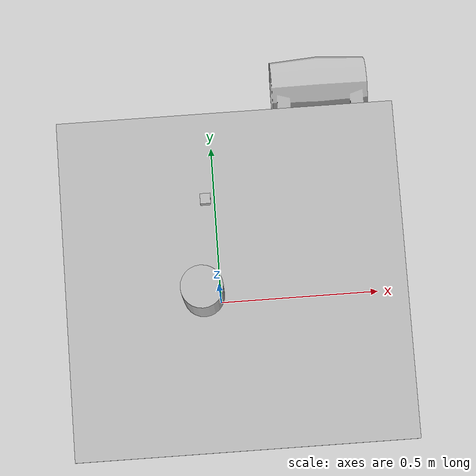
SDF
<sdf version="1.6">
 <world name="default">
  <light name="sun" type="directional">
   <pose>0 0 10 0 -0 0</pose>
   <diffuse>0.8 0.8 0.8 1</diffuse>
   <specular>0.2 0.2 0.2 1</specular>
   <attenuation>
    <range>1000</range>
    <constant>0.9</constant>
    <linear>0.01</linear>
    <quadratic>0.001</quadratic>
   </attenuation>
   <direction>-0.5 0.1 -0.9</direction>
  </light>
  <model name="ground_plane">
   <static>1</static>
   <link name="link">
    <collision name="collision">
     <geometry><plane><normal>0 0 1</normal><size>100 100</size></plane></geometry>
     <surface>
      <contact><collide_bitmask>65535</collide_bitmask></contact>
      <friction><ode><mu>100</mu><mu2>50</mu2></ode></friction>
     </surface>
    </collision>
    <visual name="visual">
     <cast_shadows>0</cast_shadows>
     <geometry><plane><normal>0 0 1</normal><size>100 100</size></plane></geometry>
     <material>
      <script><uri>file://media/materials/scripts/gazebo.material</uri><name>Gazebo/Grey</name></script>
     </material>
    </visual>
   </link>
  </model>
  <gravity>0 0 -9.8</gravity>
  <magnetic_field>6e-06 2.3e-05 -4.2e-05</magnetic_field>
  <atmosphere type="adiabatic"/>
  <physics name="default_physics" default="0" type="ode">
   <max_step_size>0.001</max_step_size>
   <real_time_factor>1</real_time_factor>
   <real_time_update_rate>1000</real_time_update_rate>
  </physics>
  <scene><ambient>0.4 0.4 0.4 1</ambient><background>0.7 0.7 0.7 1</background><shadows>1</shadows></scene>
  <spherical_coordinates>
   <surface_model>EARTH_WGS84</surface_model>
   <latitude_deg>0</latitude_deg>
   <longitude_deg>0</longitude_deg>
   <elevation>0</elevation>
   <heading_deg>0</heading_deg>
  </spherical_coordinates>
  <model name="camera_1">
   <link name="camera">
    <inertial>
     <mass>0.001</mass>
     <inertia><ixx>1e-06</ixx><ixy>0</ixy><ixz>0</ixz><iyy>1e-06</iyy><iyz>0</iyz><izz>1e-06</izz></inertia>
    </inertial>
    <visual name="camera_visual">
     <geometry><box><size>0.02 0.02 0.02</size></box></geometry>
     <material><script><uri>__default__</uri><name>__default__</name></script></material>
    </visual>
    <sensor name="camera_camera_sensor" type="camera">
     <update_rate>30</update_rate>
     <camera name="__default__">
      <horizontal_fov>1.48278</horizontal_fov>
      <image><format>R8G8B8</format><width>1280</width><height>960</height></image>
      <clip><near>0.01</near><far>100</far></clip>
     </camera>
     <plugin name="camera_camera_controller" filename="libgazebo_ros_camera.so">
      <alwaysOn>1</alwaysOn>
      <updateRate>0.0</updateRate>
      <cameraName>arm_sensor/camera</cameraName>
      <imageTopicName>image_raw</imageTopicName>
      <cameraInfoTopicName>camera_info</cameraInfoTopicName>
      <frameName>camera</frameName>
      <hackBaseline>0.07</hackBaseline>
      <distortionK1>0.0</distortionK1>
      <distortionK2>0.0</distortionK2>
      <distortionK3>0.0</distortionK3>
      <distortionT1>0.0</distortionT1>
      <distortionT2>0.0</distortionT2>
      <robotNamespace>/</robotNamespace>
     </plugin>
    </sensor>
   </link>
   <joint name="camera_joint" type="fixed"><child>camera</child><parent>world</parent></joint>
   <pose>0 0 1.9 3.14159 1.57079 3.14159</pose>
  </model>
  <model name="beer">
   <link name="link">
    <pose>0 0 0.115 0 -0 0</pose>
    <inertial>
     <mass>0.39</mass>
     <inertia><ixx>0.00058</ixx><ixy>0</ixy><ixz>0</ixz><iyy>0.00058</iyy><iyz>0</iyz><izz>0.00019</izz></inertia>
    </inertial>
    <collision name="collision">
     <geometry><cylinder><radius>0.055</radius><length>0.23</length></cylinder></geometry>
    </collision>
    <visual name="visual">
     <geometry><cylinder><radius>0.055</radius><length>0.23</length></cylinder></geometry>
     <material>
      <script>
       <uri>model://beer/materials/scripts</uri>
       <uri>model://beer/materials/textures</uri>
       <name>Beer/Diffuse</name>
      </script>
     </material>
    </visual>
   </link>
   <pose>-0.037922 -0.062359 0.77499 -1e-06 2.6e-05 0.0002</pose>
  </model>
  <model name="arm_part">
   <link name="link">
    <inertial>
     <pose>0 -0.12223 0.101835 0 -0 0</pose>
     <mass>0.5</mass>
     <inertia>
      <ixx>0.00950655</ixx>
      <ixy>0</ixy>
      <ixz>0</ixz>
      <iyy>0.00543452</iyy>
      <iyz>0</iyz>
      <izz>0.0114843</izz>
     </inertia>
    </inertial>
    <collision name="collision">
     <pose>0 -0.12223 0.101835 0 -0 0</pose>
     <geometry><box><size>0.29824 0.43206 0.20367</size></box></geometry>
    </collision>
    <visual name="visual">
     <geometry><mesh><uri>model://arm_part/meshes/arm.dae</uri></mesh></geometry>
     <material>
      <script>
       <uri>model://arm_part/materials/scripts</uri>
       <uri>model://arm_part/materials/textures</uri>
       <name>ArmPart/Diffuse</name>
      </script>
     </material>
    </visual>
   </link>
   <pose>0.354064 0.657688 -0 0 -0 0</pose>
  </model>
  <model name="cafe_table">
   <static>1</static>
   <link name="link">
    <collision name="surface">
     <pose>0 0 0.755 0 -0 0</pose>
     <geometry><box><size>0.913 0.913 0.04</size></box></geometry>
    </collision>
    <collision name="column">
     <pose>0 0 0.37 0 -0 0</pose>
     <geometry><box><size>0.042 0.042 0.74</size></box></geometry>
    </collision>
    <collision name="base">
     <pose>0 0 0.02 0 -0 0</pose>
     <geometry><box><size>0.56 0.56 0.04</size></box></geometry>
    </collision>
    <visual name="visual">
     <geometry><mesh><uri>model://cafe_table/meshes/cafe_table.dae</uri></mesh></geometry>
    </visual>
   </link>
   <pose>0.049954 -0.021838 0 0 -0 0</pose>
  </model>
 </world>
</sdf>
